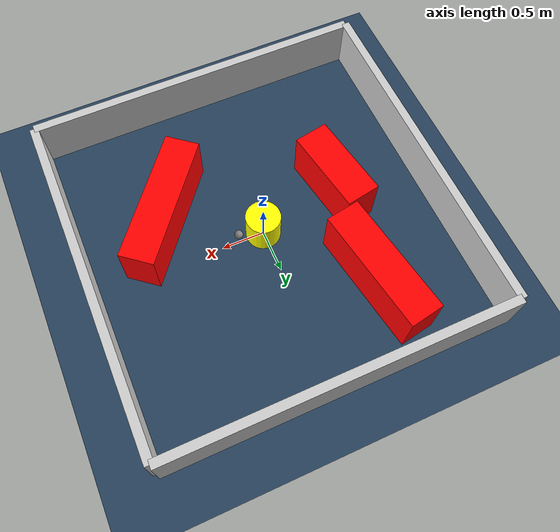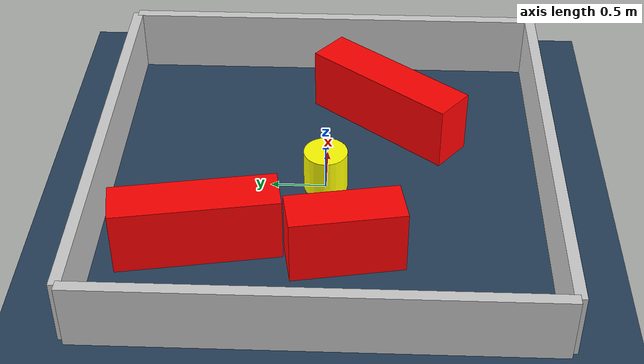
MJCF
<?xml version="1.0" ?>
<mujoco model="generated_environment">
  <option timestep="0.01" integrator="RK4" cone="elliptic"/>
  <default>
    <geom density="1"/>
  </default>
  <asset>
    <texture builtin="gradient" height="3072" rgb1="0.3 0.5 0.7" rgb2="0 0 0" type="skybox" width="512"/>
    <texture builtin="checker" height="300" mark="edge" markrgb="0.8 0.8 0.8" name="groundplane" rgb1="0.2 0.3 0.4" rgb2="0.1 0.2 0.3" type="2d" width="300"/>
    <material name="groundplane" reflectance="0.2" texrepeat="5 5" texture="groundplane" texuniform="true"/>
    <material name="robot" rgba="0.0 1.0 0.0 1"/>
  </asset>
  <worldbody>
    <light dir="0 0 -1" directional="true" pos="0 0 1.5"/>
    <geom condim="4" friction="1.0 0.005 0.001" material="groundplane" name="floor" size="0 0 0.05" type="plane"/>
    <body name="walls">
      <geom name="wall_1" condim="4" pos="-2.0 0.0 0.3" rgba="0.800000011920929 0.800000011920929 0.800000011920929 1.0" size="0.05 2.0 0.3" type="box"/>
      <geom name="wall_2" condim="4" pos="2.0 0.0 0.3" rgba="0.800000011920929 0.800000011920929 0.800000011920929 1.0" size="0.05 2.0 0.3" type="box"/>
      <geom name="wall_3" condim="4" pos="0.0 -2.0 0.3" rgba="0.800000011920929 0.800000011920929 0.800000011920929 1.0" size="2.0 0.05 0.3" type="box"/>
      <geom name="wall_4" condim="4" pos="0.0 2.0 0.3" rgba="0.800000011920929 0.800000011920929 0.800000011920929 1.0" size="2.0 0.05 0.3" type="box"/>
    </body>
    <body name="robot">
      <joint name="joint_x" type="slide" pos="0 0 0" axis="1 0 0"/>
      <joint name="joint_y" type="slide" pos="0 0 0" axis="0 1 0"/>
      <geom name="robot" type="sphere" pos="0.3 0.0 0.2" size="0.05" mass="5." friction="1.0 0.005 0.0001" condim="4" rgba="0.5 0.5 0.5 1.0"/>
      <site name="sensor_ball"/>
    </body>
    <body name="obstacle_movable_1">
      <geom name="obstacle_movable_1" condim="4" pos="0.0 0.0 0.2" euler="0 0 0.0" friction="1.0 0.005 0.001" rgba="1.0 1.0 0.0 1.0" size="0.2 0.2 0.0" type="cylinder" mass="0.1"/>
      <joint type="free"/>
    </body>
    <body name="obstacle_2_static">
      <geom name="obstacle_2_static" condim="4" pos="0.9746009336468251 -0.5757549853377366 0.3" euler="0 0 231.13949556364688" friction="1.0 0.005 0.001" rgba="1 0 0 1" size="0.7732161747547501 0.2 0.3" type="box"/>
    </body>
    <body name="obstacle_3_static">
      <geom name="obstacle_3_static" condim="4" pos="-0.8972828903759511 1.0703453881415996 0.3" euler="0 0 99.77612216154833" friction="1.0 0.005 0.001" rgba="1 0 0 1" size="0.7193113922861764 0.2 0.3" type="box"/>
    </body>
    <body name="obstacle_4_static">
      <geom name="obstacle_4_static" condim="4" pos="-0.9836581240465466 -0.1992302094078089 0.3" euler="0 0 100.08748913621383" friction="1.0 0.005 0.001" rgba="1 0 0 1" size="0.4988477034373301 0.2 0.3" type="box"/>
    </body>
  </worldbody>
  <actuator>
    <motor name="actuator_x" joint="joint_x" gear="1" ctrlrange="-1 1"/>
    <motor name="actuator_y" joint="joint_y" gear="1" ctrlrange="-1 1"/>
  </actuator>
</mujoco>
